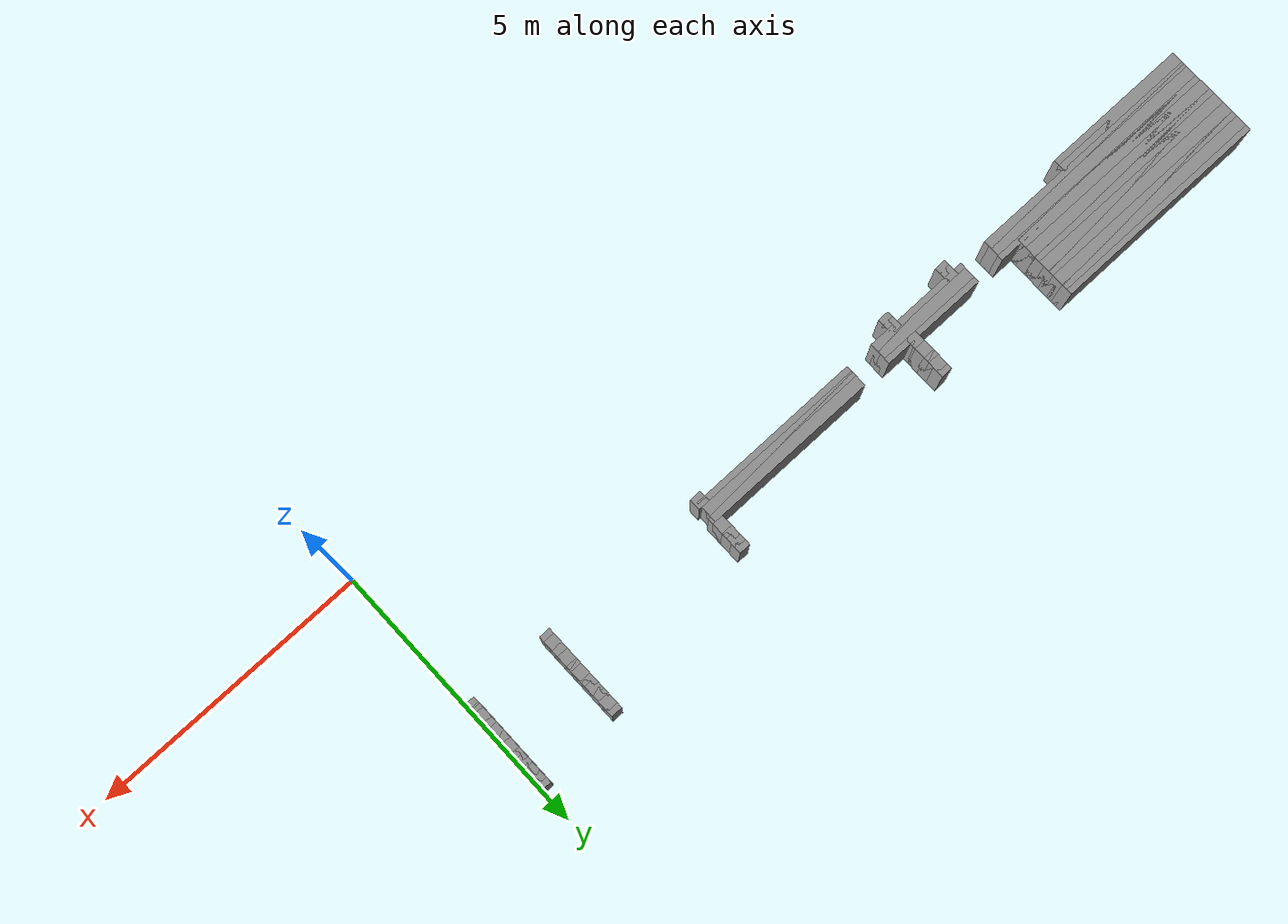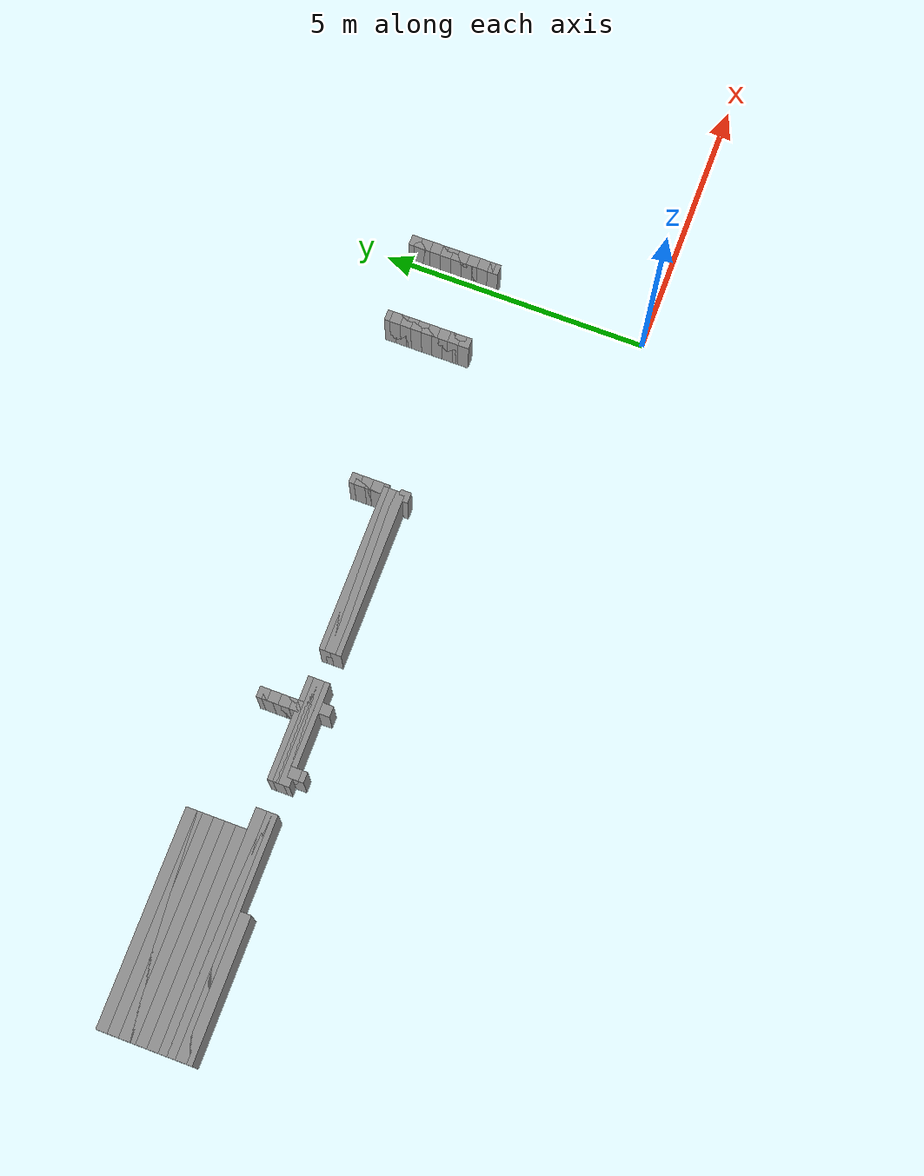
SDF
<sdf version="1.6">
 <world name="GridMap">
  <model name="GridMap">
   <link name="Wall_(86.5,28.0)">
    <collision name="Wall_(86.5,28.0)_Collision">
     <geometry><box><size>0.2 0.2 1.0</size></box></geometry>
     <pose>-8.65 2.8000000000000003 0.5 0 -0 0</pose>
    </collision>
    <visual name="Wall_(86.5,28.0)_Visual">
     <geometry><box><size>0.2 0.2 1.0</size></box></geometry>
     <pose>-8.65 2.8000000000000003 0.5 0 -0 0</pose>
     <material>
      <script><uri>file://media/materials/scripts/gazebo.material</uri><name>Gazebo/Grey</name></script>
      <ambient>1 1 1 1</ambient>
     </material>
     <meta><layer>0</layer></meta>
    </visual>
    <pose>0 0 0.5 0 -0 0</pose>
   </link>
   <link name="Wall_(98.5,28.0)">
    <collision name="Wall_(98.5,28.0)_Collision">
     <geometry><box><size>0.2 0.2 1.0</size></box></geometry>
     <pose>-9.850000000000001 2.8000000000000003 0.5 0 -0 0</pose>
    </collision>
    <visual name="Wall_(98.5,28.0)_Visual">
     <geometry><box><size>0.2 0.2 1.0</size></box></geometry>
     <pose>-9.850000000000001 2.8000000000000003 0.5 0 -0 0</pose>
     <material>
      <script><uri>file://media/materials/scripts/gazebo.material</uri><name>Gazebo/Grey</name></script>
      <ambient>1 1 1 1</ambient>
     </material>
     <meta><layer>0</layer></meta>
    </visual>
    <pose>0 0 0.5 0 -0 0</pose>
   </link>
   <link name="Wall_(136.0,28.0)">
    <collision name="Wall_(136.0,28.0)_Collision">
     <geometry><box><size>2.6 0.2 1.0</size></box></geometry>
     <pose>-13.600000000000001 2.8000000000000003 0.5 0 -0 0</pose>
    </collision>
    <visual name="Wall_(136.0,28.0)_Visual">
     <geometry><box><size>2.6 0.2 1.0</size></box></geometry>
     <pose>-13.600000000000001 2.8000000000000003 0.5 0 -0 0</pose>
     <material>
      <script><uri>file://media/materials/scripts/gazebo.material</uri><name>Gazebo/Grey</name></script>
      <ambient>1 1 1 1</ambient>
     </material>
     <meta><layer>0</layer></meta>
    </visual>
    <pose>0 0 0.5 0 -0 0</pose>
   </link>
   <link name="Wall_(1.0,29.0)">
    <collision name="Wall_(1.0,29.0)_Collision">
     <geometry><box><size>0.2 0.2 1.0</size></box></geometry>
     <pose>-0.1 2.9000000000000004 0.5 0 -0 0</pose>
    </collision>
    <visual name="Wall_(1.0,29.0)_Visual">
     <geometry><box><size>0.2 0.2 1.0</size></box></geometry>
     <pose>-0.1 2.9000000000000004 0.5 0 -0 0</pose>
     <material>
      <script><uri>file://media/materials/scripts/gazebo.material</uri><name>Gazebo/Grey</name></script>
      <ambient>1 1 1 1</ambient>
     </material>
     <meta><layer>0</layer></meta>
    </visual>
    <pose>0 0 0.5 0 -0 0</pose>
   </link>
   <link name="Wall_(16.0,29.0)">
    <collision name="Wall_(16.0,29.0)_Collision">
     <geometry><box><size>0.2 0.2 1.0</size></box></geometry>
     <pose>-1.6 2.9000000000000004 0.5 0 -0 0</pose>
    </collision>
    <visual name="Wall_(16.0,29.0)_Visual">
     <geometry><box><size>0.2 0.2 1.0</size></box></geometry>
     <pose>-1.6 2.9000000000000004 0.5 0 -0 0</pose>
     <material>
      <script><uri>file://media/materials/scripts/gazebo.material</uri><name>Gazebo/Grey</name></script>
      <ambient>1 1 1 1</ambient>
     </material>
     <meta><layer>0</layer></meta>
    </visual>
    <pose>0 0 0.5 0 -0 0</pose>
   </link>
   <link name="Wall_(46.5,29.0)">
    <collision name="Wall_(46.5,29.0)_Collision">
     <geometry><box><size>0.2 0.2 1.0</size></box></geometry>
     <pose>-4.65 2.9000000000000004 0.5 0 -0 0</pose>
    </collision>
    <visual name="Wall_(46.5,29.0)_Visual">
     <geometry><box><size>0.2 0.2 1.0</size></box></geometry>
     <pose>-4.65 2.9000000000000004 0.5 0 -0 0</pose>
     <material>
      <script><uri>file://media/materials/scripts/gazebo.material</uri><name>Gazebo/Grey</name></script>
      <ambient>1 1 1 1</ambient>
     </material>
     <meta><layer>0</layer></meta>
    </visual>
    <pose>0 0 0.5 0 -0 0</pose>
   </link>
   <link name="Wall_(86.5,29.0)">
    <collision name="Wall_(86.5,29.0)_Collision">
     <geometry><box><size>0.2 0.2 1.0</size></box></geometry>
     <pose>-8.65 2.9000000000000004 0.5 0 -0 0</pose>
    </collision>
    <visual name="Wall_(86.5,29.0)_Visual">
     <geometry><box><size>0.2 0.2 1.0</size></box></geometry>
     <pose>-8.65 2.9000000000000004 0.5 0 -0 0</pose>
     <material>
      <script><uri>file://media/materials/scripts/gazebo.material</uri><name>Gazebo/Grey</name></script>
      <ambient>1 1 1 1</ambient>
     </material>
     <meta><layer>0</layer></meta>
    </visual>
    <pose>0 0 0.5 0 -0 0</pose>
   </link>
   <link name="Wall_(98.5,29.0)">
    <collision name="Wall_(98.5,29.0)_Collision">
     <geometry><box><size>0.2 0.2 1.0</size></box></geometry>
     <pose>-9.850000000000001 2.9000000000000004 0.5 0 -0 0</pose>
    </collision>
    <visual name="Wall_(98.5,29.0)_Visual">
     <geometry><box><size>0.2 0.2 1.0</size></box></geometry>
     <pose>-9.850000000000001 2.9000000000000004 0.5 0 -0 0</pose>
     <material>
      <script><uri>file://media/materials/scripts/gazebo.material</uri><name>Gazebo/Grey</name></script>
      <ambient>1 1 1 1</ambient>
     </material>
     <meta><layer>0</layer></meta>
    </visual>
    <pose>0 0 0.5 0 -0 0</pose>
   </link>
   <link name="Wall_(136.0,29.0)">
    <collision name="Wall_(136.0,29.0)_Collision">
     <geometry><box><size>2.6 0.2 1.0</size></box></geometry>
     <pose>-13.600000000000001 2.9000000000000004 0.5 0 -0 0</pose>
    </collision>
    <visual name="Wall_(136.0,29.0)_Visual">
     <geometry><box><size>2.6 0.2 1.0</size></box></geometry>
     <pose>-13.600000000000001 2.9000000000000004 0.5 0 -0 0</pose>
     <material>
      <script><uri>file://media/materials/scripts/gazebo.material</uri><name>Gazebo/Grey</name></script>
      <ambient>1 1 1 1</ambient>
     </material>
     <meta><layer>0</layer></meta>
    </visual>
    <pose>0 0 0.5 0 -0 0</pose>
   </link>
   <link name="Wall_(1.0,30.0)">
    <collision name="Wall_(1.0,30.0)_Collision">
     <geometry><box><size>0.2 0.2 1.0</size></box></geometry>
     <pose>-0.1 3.0 0.5 0 -0 0</pose>
    </collision>
    <visual name="Wall_(1.0,30.0)_Visual">
     <geometry><box><size>0.2 0.2 1.0</size></box></geometry>
     <pose>-0.1 3.0 0.5 0 -0 0</pose>
     <material>
      <script><uri>file://media/materials/scripts/gazebo.material</uri><name>Gazebo/Grey</name></script>
      <ambient>1 1 1 1</ambient>
     </material>
     <meta><layer>0</layer></meta>
    </visual>
    <pose>0 0 0.5 0 -0 0</pose>
   </link>
   <link name="Wall_(16.0,30.0)">
    <collision name="Wall_(16.0,30.0)_Collision">
     <geometry><box><size>0.2 0.2 1.0</size></box></geometry>
     <pose>-1.6 3.0 0.5 0 -0 0</pose>
    </collision>
    <visual name="Wall_(16.0,30.0)_Visual">
     <geometry><box><size>0.2 0.2 1.0</size></box></geometry>
     <pose>-1.6 3.0 0.5 0 -0 0</pose>
     <material>
      <script><uri>file://media/materials/scripts/gazebo.material</uri><name>Gazebo/Grey</name></script>
      <ambient>1 1 1 1</ambient>
     </material>
     <meta><layer>0</layer></meta>
    </visual>
    <pose>0 0 0.5 0 -0 0</pose>
   </link>
   <link name="Wall_(61.5,30.0)">
    <collision name="Wall_(61.5,30.0)_Collision">
     <geometry><box><size>3.1 0.2 1.0</size></box></geometry>
     <pose>-6.15 3.0 0.5 0 -0 0</pose>
    </collision>
    <visual name="Wall_(61.5,30.0)_Visual">
     <geometry><box><size>3.1 0.2 1.0</size></box></geometry>
     <pose>-6.15 3.0 0.5 0 -0 0</pose>
     <material>
      <script><uri>file://media/materials/scripts/gazebo.material</uri><name>Gazebo/Grey</name></script>
      <ambient>1 1 1 1</ambient>
     </material>
     <meta><layer>0</layer></meta>
    </visual>
    <pose>0 0 0.5 0 -0 0</pose>
   </link>
   <link name="Wall_(91.5,30.0)">
    <collision name="Wall_(91.5,30.0)_Collision">
     <geometry><box><size>1.9000000000000001 0.2 1.0</size></box></geometry>
     <pose>-9.15 3.0 0.5 0 -0 0</pose>
    </collision>
    <visual name="Wall_(91.5,30.0)_Visual">
     <geometry><box><size>1.9000000000000001 0.2 1.0</size></box></geometry>
     <pose>-9.15 3.0 0.5 0 -0 0</pose>
     <material>
      <script><uri>file://media/materials/scripts/gazebo.material</uri><name>Gazebo/Grey</name></script>
      <ambient>1 1 1 1</ambient>
     </material>
     <meta><layer>0</layer></meta>
    </visual>
    <pose>0 0 0.5 0 -0 0</pose>
   </link>
   <link name="Wall_(127.5,30.0)">
    <collision name="Wall_(127.5,30.0)_Collision">
     <geometry><box><size>4.3 0.2 1.0</size></box></geometry>
     <pose>-12.75 3.0 0.5 0 -0 0</pose>
    </collision>
    <visual name="Wall_(127.5,30.0)_Visual">
     <geometry><box><size>4.3 0.2 1.0</size></box></geometry>
     <pose>-12.75 3.0 0.5 0 -0 0</pose>
     <material>
      <script><uri>file://media/materials/scripts/gazebo.material</uri><name>Gazebo/Grey</name></script>
      <ambient>1 1 1 1</ambient>
     </material>
     <meta><layer>0</layer></meta>
    </visual>
    <pose>0 0 0.5 0 -0 0</pose>
   </link>
   <link name="Wall_(1.0,31.0)">
    <collision name="Wall_(1.0,31.0)_Collision">
     <geometry><box><size>0.2 0.2 1.0</size></box></geometry>
     <pose>-0.1 3.1 0.5 0 -0 0</pose>
    </collision>
    <visual name="Wall_(1.0,31.0)_Visual">
     <geometry><box><size>0.2 0.2 1.0</size></box></geometry>
     <pose>-0.1 3.1 0.5 0 -0 0</pose>
     <material>
      <script><uri>file://media/materials/scripts/gazebo.material</uri><name>Gazebo/Grey</name></script>
      <ambient>1 1 1 1</ambient>
     </material>
     <meta><layer>0</layer></meta>
    </visual>
    <pose>0 0 0.5 0 -0 0</pose>
   </link>
   <link name="Wall_(16.0,31.0)">
    <collision name="Wall_(16.0,31.0)_Collision">
     <geometry><box><size>0.2 0.2 1.0</size></box></geometry>
     <pose>-1.6 3.1 0.5 0 -0 0</pose>
    </collision>
    <visual name="Wall_(16.0,31.0)_Visual">
     <geometry><box><size>0.2 0.2 1.0</size></box></geometry>
     <pose>-1.6 3.1 0.5 0 -0 0</pose>
     <material>
      <script><uri>file://media/materials/scripts/gazebo.material</uri><name>Gazebo/Grey</name></script>
      <ambient>1 1 1 1</ambient>
     </material>
     <meta><layer>0</layer></meta>
    </visual>
    <pose>0 0 0.5 0 -0 0</pose>
   </link>
   <link name="Wall_(61.5,31.0)">
    <collision name="Wall_(61.5,31.0)_Collision">
     <geometry><box><size>3.1 0.2 1.0</size></box></geometry>
     <pose>-6.15 3.1 0.5 0 -0 0</pose>
    </collision>
    <visual name="Wall_(61.5,31.0)_Visual">
     <geometry><box><size>3.1 0.2 1.0</size></box></geometry>
     <pose>-6.15 3.1 0.5 0 -0 0</pose>
     <material>
      <script><uri>file://media/materials/scripts/gazebo.material</uri><name>Gazebo/Grey</name></script>
      <ambient>1 1 1 1</ambient>
     </material>
     <meta><layer>0</layer></meta>
    </visual>
    <pose>0 0 0.5 0 -0 0</pose>
   </link>
   <link name="Wall_(91.5,31.0)">
    <collision name="Wall_(91.5,31.0)_Collision">
     <geometry><box><size>1.9000000000000001 0.2 1.0</size></box></geometry>
     <pose>-9.15 3.1 0.5 0 -0 0</pose>
    </collision>
    <visual name="Wall_(91.5,31.0)_Visual">
     <geometry><box><size>1.9000000000000001 0.2 1.0</size></box></geometry>
     <pose>-9.15 3.1 0.5 0 -0 0</pose>
     <material>
      <script><uri>file://media/materials/scripts/gazebo.material</uri><name>Gazebo/Grey</name></script>
      <ambient>1 1 1 1</ambient>
     </material>
     <meta><layer>0</layer></meta>
    </visual>
    <pose>0 0 0.5 0 -0 0</pose>
   </link>
   <link name="Wall_(127.5,31.0)">
    <collision name="Wall_(127.5,31.0)_Collision">
     <geometry><box><size>4.3 0.2 1.0</size></box></geometry>
     <pose>-12.75 3.1 0.5 0 -0 0</pose>
    </collision>
    <visual name="Wall_(127.5,31.0)_Visual">
     <geometry><box><size>4.3 0.2 1.0</size></box></geometry>
     <pose>-12.75 3.1 0.5 0 -0 0</pose>
     <material>
      <script><uri>file://media/materials/scripts/gazebo.material</uri><name>Gazebo/Grey</name></script>
      <ambient>1 1 1 1</ambient>
     </material>
     <meta><layer>0</layer></meta>
    </visual>
    <pose>0 0 0.5 0 -0 0</pose>
   </link>
   <link name="Wall_(1.0,32.0)">
    <collision name="Wall_(1.0,32.0)_Collision">
     <geometry><box><size>0.2 0.2 1.0</size></box></geometry>
     <pose>-0.1 3.2 0.5 0 -0 0</pose>
    </collision>
    <visual name="Wall_(1.0,32.0)_Visual">
     <geometry><box><size>0.2 0.2 1.0</size></box></geometry>
     <pose>-0.1 3.2 0.5 0 -0 0</pose>
     <material>
      <script><uri>file://media/materials/scripts/gazebo.material</uri><name>Gazebo/Grey</name></script>
      <ambient>1 1 1 1</ambient>
     </material>
     <meta><layer>0</layer></meta>
    </visual>
    <pose>0 0 0.5 0 -0 0</pose>
   </link>
   <link name="Wall_(16.0,32.0)">
    <collision name="Wall_(16.0,32.0)_Collision">
     <geometry><box><size>0.2 0.2 1.0</size></box></geometry>
     <pose>-1.6 3.2 0.5 0 -0 0</pose>
    </collision>
    <visual name="Wall_(16.0,32.0)_Visual">
     <geometry><box><size>0.2 0.2 1.0</size></box></geometry>
     <pose>-1.6 3.2 0.5 0 -0 0</pose>
     <material>
      <script><uri>file://media/materials/scripts/gazebo.material</uri><name>Gazebo/Grey</name></script>
      <ambient>1 1 1 1</ambient>
     </material>
     <meta><layer>0</layer></meta>
    </visual>
    <pose>0 0 0.5 0 -0 0</pose>
   </link>
   <link name="Wall_(61.5,32.0)">
    <collision name="Wall_(61.5,32.0)_Collision">
     <geometry><box><size>3.1 0.2 1.0</size></box></geometry>
     <pose>-6.15 3.2 0.5 0 -0 0</pose>
    </collision>
    <visual name="Wall_(61.5,32.0)_Visual">
     <geometry><box><size>3.1 0.2 1.0</size></box></geometry>
     <pose>-6.15 3.2 0.5 0 -0 0</pose>
     <material>
      <script><uri>file://media/materials/scripts/gazebo.material</uri><name>Gazebo/Grey</name></script>
      <ambient>1 1 1 1</ambient>
     </material>
     <meta><layer>0</layer></meta>
    </visual>
    <pose>0 0 0.5 0 -0 0</pose>
   </link>
   <link name="Wall_(91.5,32.0)">
    <collision name="Wall_(91.5,32.0)_Collision">
     <geometry><box><size>1.9000000000000001 0.2 1.0</size></box></geometry>
     <pose>-9.15 3.2 0.5 0 -0 0</pose>
    </collision>
    <visual name="Wall_(91.5,32.0)_Visual">
     <geometry><box><size>1.9000000000000001 0.2 1.0</size></box></geometry>
     <pose>-9.15 3.2 0.5 0 -0 0</pose>
     <material>
      <script><uri>file://media/materials/scripts/gazebo.material</uri><name>Gazebo/Grey</name></script>
      <ambient>1 1 1 1</ambient>
     </material>
     <meta><layer>0</layer></meta>
    </visual>
    <pose>0 0 0.5 0 -0 0</pose>
   </link>
   <link name="Wall_(127.5,32.0)">
    <collision name="Wall_(127.5,32.0)_Collision">
     <geometry><box><size>4.3 0.2 1.0</size></box></geometry>
     <pose>-12.75 3.2 0.5 0 -0 0</pose>
    </collision>
    <visual name="Wall_(127.5,32.0)_Visual">
     <geometry><box><size>4.3 0.2 1.0</size></box></geometry>
     <pose>-12.75 3.2 0.5 0 -0 0</pose>
     <material>
      <script><uri>file://media/materials/scripts/gazebo.material</uri><name>Gazebo/Grey</name></script>
      <ambient>1 1 1 1</ambient>
     </material>
     <meta><layer>0</layer></meta>
    </visual>
    <pose>0 0 0.5 0 -0 0</pose>
   </link>
   <link name="Wall_(1.0,33.0)">
    <collision name="Wall_(1.0,33.0)_Collision">
     <geometry><box><size>0.2 0.2 1.0</size></box></geometry>
     <pose>-0.1 3.3000000000000003 0.5 0 -0 0</pose>
    </collision>
    <visual name="Wall_(1.0,33.0)_Visual">
     <geometry><box><size>0.2 0.2 1.0</size></box></geometry>
     <pose>-0.1 3.3000000000000003 0.5 0 -0 0</pose>
     <material>
      <script><uri>file://media/materials/scripts/gazebo.material</uri><name>Gazebo/Grey</name></script>
      <ambient>1 1 1 1</ambient>
     </material>
     <meta><layer>0</layer></meta>
    </visual>
    <pose>0 0 0.5 0 -0 0</pose>
   </link>
   <link name="Wall_(16.0,33.0)">
    <collision name="Wall_(16.0,33.0)_Collision">
     <geometry><box><size>0.2 0.2 1.0</size></box></geometry>
     <pose>-1.6 3.3000000000000003 0.5 0 -0 0</pose>
    </collision>
    <visual name="Wall_(16.0,33.0)_Visual">
     <geometry><box><size>0.2 0.2 1.0</size></box></geometry>
     <pose>-1.6 3.3000000000000003 0.5 0 -0 0</pose>
     <material>
      <script><uri>file://media/materials/scripts/gazebo.material</uri><name>Gazebo/Grey</name></script>
      <ambient>1 1 1 1</ambient>
     </material>
     <meta><layer>0</layer></meta>
    </visual>
    <pose>0 0 0.5 0 -0 0</pose>
   </link>
   <link name="Wall_(46.5,33.0)">
    <collision name="Wall_(46.5,33.0)_Collision">
     <geometry><box><size>0.2 0.2 1.0</size></box></geometry>
     <pose>-4.65 3.3000000000000003 0.5 0 -0 0</pose>
    </collision>
    <visual name="Wall_(46.5,33.0)_Visual">
     <geometry><box><size>0.2 0.2 1.0</size></box></geometry>
     <pose>-4.65 3.3000000000000003 0.5 0 -0 0</pose>
     <material>
      <script><uri>file://media/materials/scripts/gazebo.material</uri><name>Gazebo/Grey</name></script>
      <ambient>1 1 1 1</ambient>
     </material>
     <meta><layer>0</layer></meta>
    </visual>
    <pose>0 0 0.5 0 -0 0</pose>
   </link>
   <link name="Wall_(87.5,33.0)">
    <collision name="Wall_(87.5,33.0)_Collision">
     <geometry><box><size>0.2 0.2 1.0</size></box></geometry>
     <pose>-8.75 3.3000000000000003 0.5 0 -0 0</pose>
    </collision>
    <visual name="Wall_(87.5,33.0)_Visual">
     <geometry><box><size>0.2 0.2 1.0</size></box></geometry>
     <pose>-8.75 3.3000000000000003 0.5 0 -0 0</pose>
     <material>
      <script><uri>file://media/materials/scripts/gazebo.material</uri><name>Gazebo/Grey</name></script>
      <ambient>1 1 1 1</ambient>
     </material>
     <meta><layer>0</layer></meta>
    </visual>
    <pose>0 0 0.5 0 -0 0</pose>
   </link>
   <link name="Wall_(129.5,33.0)">
    <collision name="Wall_(129.5,33.0)_Collision">
     <geometry><box><size>3.9000000000000004 0.2 1.0</size></box></geometry>
     <pose>-12.950000000000001 3.3000000000000003 0.5 0 -0 0</pose>
    </collision>
    <visual name="Wall_(129.5,33.0)_Visual">
     <geometry><box><size>3.9000000000000004 0.2 1.0</size></box></geometry>
     <pose>-12.950000000000001 3.3000000000000003 0.5 0 -0 0</pose>
     <material>
      <script><uri>file://media/materials/scripts/gazebo.material</uri><name>Gazebo/Grey</name></script>
      <ambient>1 1 1 1</ambient>
     </material>
     <meta><layer>0</layer></meta>
    </visual>
    <pose>0 0 0.5 0 -0 0</pose>
   </link>
   <link name="Wall_(1.0,34.0)">
    <collision name="Wall_(1.0,34.0)_Collision">
     <geometry><box><size>0.2 0.2 1.0</size></box></geometry>
     <pose>-0.1 3.4000000000000004 0.5 0 -0 0</pose>
    </collision>
    <visual name="Wall_(1.0,34.0)_Visual">
     <geometry><box><size>0.2 0.2 1.0</size></box></geometry>
     <pose>-0.1 3.4000000000000004 0.5 0 -0 0</pose>
     <material>
      <script><uri>file://media/materials/scripts/gazebo.material</uri><name>Gazebo/Grey</name></script>
      <ambient>1 1 1 1</ambient>
     </material>
     <meta><layer>0</layer></meta>
    </visual>
    <pose>0 0 0.5 0 -0 0</pose>
   </link>
   <link name="Wall_(16.0,34.0)">
    <collision name="Wall_(16.0,34.0)_Collision">
     <geometry><box><size>0.2 0.2 1.0</size></box></geometry>
     <pose>-1.6 3.4000000000000004 0.5 0 -0 0</pose>
    </collision>
    <visual name="Wall_(16.0,34.0)_Visual">
     <geometry><box><size>0.2 0.2 1.0</size></box></geometry>
     <pose>-1.6 3.4000000000000004 0.5 0 -0 0</pose>
     <material>
      <script><uri>file://media/materials/scripts/gazebo.material</uri><name>Gazebo/Grey</name></script>
      <ambient>1 1 1 1</ambient>
     </material>
     <meta><layer>0</layer></meta>
    </visual>
    <pose>0 0 0.5 0 -0 0</pose>
   </link>
   <link name="Wall_(46.5,34.0)">
    <collision name="Wall_(46.5,34.0)_Collision">
     <geometry><box><size>0.2 0.2 1.0</size></box></geometry>
     <pose>-4.65 3.4000000000000004 0.5 0 -0 0</pose>
    </collision>
    <visual name="Wall_(46.5,34.0)_Visual">
     <geometry><box><size>0.2 0.2 1.0</size></box></geometry>
     <pose>-4.65 3.4000000000000004 0.5 0 -0 0</pose>
     <material>
      <script><uri>file://media/materials/scripts/gazebo.material</uri><name>Gazebo/Grey</name></script>
      <ambient>1 1 1 1</ambient>
     </material>
     <meta><layer>0</layer></meta>
    </visual>
    <pose>0 0 0.5 0 -0 0</pose>
   </link>
   <link name="Wall_(87.5,34.0)">
    <collision name="Wall_(87.5,34.0)_Collision">
     <geometry><box><size>0.2 0.2 1.0</size></box></geometry>
     <pose>-8.75 3.4000000000000004 0.5 0 -0 0</pose>
    </collision>
    <visual name="Wall_(87.5,34.0)_Visual">
     <geometry><box><size>0.2 0.2 1.0</size></box></geometry>
     <pose>-8.75 3.4000000000000004 0.5 0 -0 0</pose>
     <material>
      <script><uri>file://media/materials/scripts/gazebo.material</uri><name>Gazebo/Grey</name></script>
      <ambient>1 1 1 1</ambient>
     </material>
     <meta><layer>0</layer></meta>
    </visual>
    <pose>0 0 0.5 0 -0 0</pose>
   </link>
   <link name="Wall_(129.5,34.0)">
    <collision name="Wall_(129.5,34.0)_Collision">
     <geometry><box><size>3.9000000000000004 0.2 1.0</size></box></geometry>
     <pose>-12.950000000000001 3.4000000000000004 0.5 0 -0 0</pose>
    </collision>
    <visual name="Wall_(129.5,34.0)_Visual">
     <geometry><box><size>3.9000000000000004 0.2 1.0</size></box></geometry>
     <pose>-12.950000000000001 3.4000000000000004 0.5 0 -0 0</pose>
     <material>
      <script><uri>file://media/materials/scripts/gazebo.material</uri><name>Gazebo/Grey</name></script>
      <ambient>1 1 1 1</ambient>
     </material>
     <meta><layer>0</layer></meta>
    </visual>
    <pose>0 0 0.5 0 -0 0</pose>
   </link>
   <link name="Wall_(1.0,35.0)">
    <collision name="Wall_(1.0,35.0)_Collision">
     <geometry><box><size>0.2 0.2 1.0</size></box></geometry>
     <pose>-0.1 3.5 0.5 0 -0 0</pose>
    </collision>
    <visual name="Wall_(1.0,35.0)_Visual">
     <geometry><box><size>0.2 0.2 1.0</size></box></geometry>
     <pose>-0.1 3.5 0.5 0 -0 0</pose>
     <material>
      <script><uri>file://media/materials/scripts/gazebo.material</uri><name>Gazebo/Grey</name></script>
      <ambient>1 1 1 1</ambient>
     </material>
     <meta><layer>0</layer></meta>
    </visual>
    <pose>0 0 0.5 0 -0 0</pose>
   </link>
   <link name="Wall_(16.0,35.0)">
    <collision name="Wall_(16.0,35.0)_Collision">
     <geometry><box><size>0.2 0.2 1.0</size></box></geometry>
     <pose>-1.6 3.5 0.5 0 -0 0</pose>
    </collision>
    <visual name="Wall_(16.0,35.0)_Visual">
     <geometry><box><size>0.2 0.2 1.0</size></box></geometry>
     <pose>-1.6 3.5 0.5 0 -0 0</pose>
     <material>
      <script><uri>file://media/materials/scripts/gazebo.material</uri><name>Gazebo/Grey</name></script>
      <ambient>1 1 1 1</ambient>
     </material>
     <meta><layer>0</layer></meta>
    </visual>
    <pose>0 0 0.5 0 -0 0</pose>
   </link>
   <link name="Wall_(46.5,35.0)">
    <collision name="Wall_(46.5,35.0)_Collision">
     <geometry><box><size>0.2 0.2 1.0</size></box></geometry>
     <pose>-4.65 3.5 0.5 0 -0 0</pose>
    </collision>
    <visual name="Wall_(46.5,35.0)_Visual">
     <geometry><box><size>0.2 0.2 1.0</size></box></geometry>
     <pose>-4.65 3.5 0.5 0 -0 0</pose>
     <material>
      <script><uri>file://media/materials/scripts/gazebo.material</uri><name>Gazebo/Grey</name></script>
      <ambient>1 1 1 1</ambient>
     </material>
     <meta><layer>0</layer></meta>
    </visual>
    <pose>0 0 0.5 0 -0 0</pose>
   </link>
   <link name="Wall_(87.5,35.0)">
    <collision name="Wall_(87.5,35.0)_Collision">
     <geometry><box><size>0.2 0.2 1.0</size></box></geometry>
     <pose>-8.75 3.5 0.5 0 -0 0</pose>
    </collision>
    <visual name="Wall_(87.5,35.0)_Visual">
     <geometry><box><size>0.2 0.2 1.0</size></box></geometry>
     <pose>-8.75 3.5 0.5 0 -0 0</pose>
     <material>
      <script><uri>file://media/materials/scripts/gazebo.material</uri><name>Gazebo/Grey</name></script>
      <ambient>1 1 1 1</ambient>
     </material>
     <meta><layer>0</layer></meta>
    </visual>
    <pose>0 0 0.5 0 -0 0</pose>
   </link>
   <link name="Wall_(129.5,35.0)">
    <collision name="Wall_(129.5,35.0)_Collision">
     <geometry><box><size>3.9000000000000004 0.2 1.0</size></box></geometry>
     <pose>-12.950000000000001 3.5 0.5 0 -0 0</pose>
    </collision>
    <visual name="Wall_(129.5,35.0)_Visual">
     <geometry><box><size>3.9000000000000004 0.2 1.0</size></box></geometry>
     <pose>-12.950000000000001 3.5 0.5 0 -0 0</pose>
     <material>
      <script><uri>file://media/materials/scripts/gazebo.material</uri><name>Gazebo/Grey</name></script>
      <ambient>1 1 1 1</ambient>
     </material>
     <meta><layer>0</layer></meta>
    </visual>
    <pose>0 0 0.5 0 -0 0</pose>
   </link>
   <link name="Wall_(1.0,36.0)">
    <collision name="Wall_(1.0,36.0)_Collision">
     <geometry><box><size>0.2 0.2 1.0</size></box></geometry>
     <pose>-0.1 3.6 0.5 0 -0 0</pose>
    </collision>
    <visual name="Wall_(1.0,36.0)_Visual">
     <geometry><box><size>0.2 0.2 1.0</size></box></geometry>
     <pose>-0.1 3.6 0.5 0 -0 0</pose>
     <material>
      <script><uri>file://media/materials/scripts/gazebo.material</uri><name>Gazebo/Grey</name></script>
      <ambient>1 1 1 1</ambient>
     </material>
     <meta><layer>0</layer></meta>
    </visual>
    <pose>0 0 0.5 0 -0 0</pose>
   </link>
   <link name="Wall_(16.0,36.0)">
    <collision name="Wall_(16.0,36.0)_Collision">
     <geometry><box><size>0.2 0.2 1.0</size></box></geometry>
     <pose>-1.6 3.6 0.5 0 -0 0</pose>
    </collision>
    <visual name="Wall_(16.0,36.0)_Visual">
     <geometry><box><size>0.2 0.2 1.0</size></box></geometry>
     <pose>-1.6 3.6 0.5 0 -0 0</pose>
     <material>
      <script><uri>file://media/materials/scripts/gazebo.material</uri><name>Gazebo/Grey</name></script>
      <ambient>1 1 1 1</ambient>
     </material>
     <meta><layer>0</layer></meta>
    </visual>
    <pose>0 0 0.5 0 -0 0</pose>
   </link>
   <link name="Wall_(46.5,36.0)">
    <collision name="Wall_(46.5,36.0)_Collision">
     <geometry><box><size>0.2 0.2 1.0</size></box></geometry>
     <pose>-4.65 3.6 0.5 0 -0 0</pose>
    </collision>
    <visual name="Wall_(46.5,36.0)_Visual">
     <geometry><box><size>0.2 0.2 1.0</size></box></geometry>
     <pose>-4.65 3.6 0.5 0 -0 0</pose>
     <material>
      <script><uri>file://media/materials/scripts/gazebo.material</uri><name>Gazebo/Grey</name></script>
      <ambient>1 1 1 1</ambient>
     </material>
     <meta><layer>0</layer></meta>
    </visual>
    <pose>0 0 0.5 0 -0 0</pose>
   </link>
   <link name="Wall_(87.5,36.0)">
    <collision name="Wall_(87.5,36.0)_Collision">
     <geometry><box><size>0.2 0.2 1.0</size></box></geometry>
     <pose>-8.75 3.6 0.5 0 -0 0</pose>
    </collision>
    <visual name="Wall_(87.5,36.0)_Visual">
     <geometry><box><size>0.2 0.2 1.0</size></box></geometry>
     <pose>-8.75 3.6 0.5 0 -0 0</pose>
     <material>
      <script><uri>file://media/materials/scripts/gazebo.material</uri><name>Gazebo/Grey</name></script>
      <ambient>1 1 1 1</ambient>
     </material>
     <meta><layer>0</layer></meta>
    </visual>
    <pose>0 0 0.5 0 -0 0</pose>
   </link>
   <link name="Wall_(129.5,36.0)">
    <collision name="Wall_(129.5,36.0)_Collision">
     <geometry><box><size>3.9000000000000004 0.2 1.0</size></box></geometry>
     <pose>-12.950000000000001 3.6 0.5 0 -0 0</pose>
    </collision>
    <visual name="Wall_(129.5,36.0)_Visual">
     <geometry><box><size>3.9000000000000004 0.2 1.0</size></box></geometry>
     <pose>-12.950000000000001 3.6 0.5 0 -0 0</pose>
     <material>
      <script><uri>file://media/materials/scripts/gazebo.material</uri><name>Gazebo/Grey</name></script>
      <ambient>1 1 1 1</ambient>
     </material>
     <meta><layer>0</layer></meta>
    </visual>
    <pose>0 0 0.5 0 -0 0</pose>
   </link>
   <link name="Wall_(1.0,37.0)">
    <collision name="Wall_(1.0,37.0)_Collision">
     <geometry><box><size>0.2 0.2 1.0</size></box></geometry>
     <pose>-0.1 3.7 0.5 0 -0 0</pose>
    </collision>
    <visual name="Wall_(1.0,37.0)_Visual">
     <geometry><box><size>0.2 0.2 1.0</size></box></geometry>
     <pose>-0.1 3.7 0.5 0 -0 0</pose>
     <material>
      <script><uri>file://media/materials/scripts/gazebo.material</uri><name>Gazebo/Grey</name></script>
      <ambient>1 1 1 1</ambient>
     </material>
     <meta><layer>0</layer></meta>
    </visual>
    <pose>0 0 0.5 0 -0 0</pose>
   </link>
   <link name="Wall_(16.0,37.0)">
    <collision name="Wall_(16.0,37.0)_Collision">
     <geometry><box><size>0.2 0.2 1.0</size></box></geometry>
     <pose>-1.6 3.7 0.5 0 -0 0</pose>
    </collision>
    <visual name="Wall_(16.0,37.0)_Visual">
     <geometry><box><size>0.2 0.2 1.0</size></box></geometry>
     <pose>-1.6 3.7 0.5 0 -0 0</pose>
     <material>
      <script><uri>file://media/materials/scripts/gazebo.material</uri><name>Gazebo/Grey</name></script>
      <ambient>1 1 1 1</ambient>
     </material>
     <meta><layer>0</layer></meta>
    </visual>
    <pose>0 0 0.5 0 -0 0</pose>
   </link>
   <link name="Wall_(46.5,37.0)">
    <collision name="Wall_(46.5,37.0)_Collision">
     <geometry><box><size>0.2 0.2 1.0</size></box></geometry>
     <pose>-4.65 3.7 0.5 0 -0 0</pose>
    </collision>
    <visual name="Wall_(46.5,37.0)_Visual">
     <geometry><box><size>0.2 0.2 1.0</size></box></geometry>
     <pose>-4.65 3.7 0.5 0 -0 0</pose>
     <material>
      <script><uri>file://media/materials/scripts/gazebo.material</uri><name>Gazebo/Grey</name></script>
      <ambient>1 1 1 1</ambient>
     </material>
     <meta><layer>0</layer></meta>
    </visual>
    <pose>0 0 0.5 0 -0 0</pose>
   </link>
   <link name="Wall_(87.5,37.0)">
    <collision name="Wall_(87.5,37.0)_Collision">
     <geometry><box><size>0.2 0.2 1.0</size></box></geometry>
     <pose>-8.75 3.7 0.5 0 -0 0</pose>
    </collision>
    <visual name="Wall_(87.5,37.0)_Visual">
     <geometry><box><size>0.2 0.2 1.0</size></box></geometry>
     <pose>-8.75 3.7 0.5 0 -0 0</pose>
     <material>
      <script><uri>file://media/materials/scripts/gazebo.material</uri><name>Gazebo/Grey</name></script>
      <ambient>1 1 1 1</ambient>
     </material>
     <meta><layer>0</layer></meta>
    </visual>
    <pose>0 0 0.5 0 -0 0</pose>
   </link>
   <link name="Wall_(129.5,37.0)">
    <collision name="Wall_(129.5,37.0)_Collision">
     <geometry><box><size>3.9000000000000004 0.2 1.0</size></box></geometry>
     <pose>-12.950000000000001 3.7 0.5 0 -0 0</pose>
    </collision>
    <visual name="Wall_(129.5,37.0)_Visual">
     <geometry><box><size>3.9000000000000004 0.2 1.0</size></box></geometry>
     <pose>-12.950000000000001 3.7 0.5 0 -0 0</pose>
     <material>
      <script><uri>file://media/materials/scripts/gazebo.material</uri><name>Gazebo/Grey</name></script>
      <ambient>1 1 1 1</ambient>
     </material>
     <meta><layer>0</layer></meta>
    </visual>
    <pose>0 0 0.5 0 -0 0</pose>
   </link>
   <link name="Wall_(1.0,38.0)">
    <collision name="Wall_(1.0,38.0)_Collision">
     <geometry><box><size>0.2 0.2 1.0</size></box></geometry>
     <pose>-0.1 3.8000000000000003 0.5 0 -0 0</pose>
    </collision>
    <visual name="Wall_(1.0,38.0)_Visual">
     <geometry><box><size>0.2 0.2 1.0</size></box></geometry>
     <pose>-0.1 3.8000000000000003 0.5 0 -0 0</pose>
     <material>
      <script><uri>file://media/materials/scripts/gazebo.material</uri><name>Gazebo/Grey</name></script>
      <ambient>1 1 1 1</ambient>
     </material>
     <meta><layer>0</layer></meta>
    </visual>
    <pose>0 0 0.5 0 -0 0</pose>
   </link>
   <link name="Wall_(16.0,38.0)">
    <collision name="Wall_(16.0,38.0)_Collision">
     <geometry><box><size>0.2 0.2 1.0</size></box></geometry>
     <pose>-1.6 3.8000000000000003 0.5 0 -0 0</pose>
    </collision>
    <visual name="Wall_(16.0,38.0)_Visual">
     <geometry><box><size>0.2 0.2 1.0</size></box></geometry>
     <pose>-1.6 3.8000000000000003 0.5 0 -0 0</pose>
     <material>
      <script><uri>file://media/materials/scripts/gazebo.material</uri><name>Gazebo/Grey</name></script>
      <ambient>1 1 1 1</ambient>
     </material>
     <meta><layer>0</layer></meta>
    </visual>
    <pose>0 0 0.5 0 -0 0</pose>
   </link>
   <link name="Wall_(46.5,38.0)">
    <collision name="Wall_(46.5,38.0)_Collision">
     <geometry><box><size>0.2 0.2 1.0</size></box></geometry>
     <pose>-4.65 3.8000000000000003 0.5 0 -0 0</pose>
    </collision>
    <visual name="Wall_(46.5,38.0)_Visual">
     <geometry><box><size>0.2 0.2 1.0</size></box></geometry>
     <pose>-4.65 3.8000000000000003 0.5 0 -0 0</pose>
     <material>
      <script><uri>file://media/materials/scripts/gazebo.material</uri><name>Gazebo/Grey</name></script>
      <ambient>1 1 1 1</ambient>
     </material>
     <meta><layer>0</layer></meta>
    </visual>
    <pose>0 0 0.5 0 -0 0</pose>
   </link>
   <link name="Wall_(87.5,38.0)">
    <collision name="Wall_(87.5,38.0)_Collision">
     <geometry><box><size>0.2 0.2 1.0</size></box></geometry>
     <pose>-8.75 3.8000000000000003 0.5 0 -0 0</pose>
    </collision>
    <visual name="Wall_(87.5,38.0)_Visual">
     <geometry><box><size>0.2 0.2 1.0</size></box></geometry>
     <pose>-8.75 3.8000000000000003 0.5 0 -0 0</pose>
     <material>
      <script><uri>file://media/materials/scripts/gazebo.material</uri><name>Gazebo/Grey</name></script>
      <ambient>1 1 1 1</ambient>
     </material>
     <meta><layer>0</layer></meta>
    </visual>
    <pose>0 0 0.5 0 -0 0</pose>
   </link>
   <link name="Wall_(129.5,38.0)">
    <collision name="Wall_(129.5,38.0)_Collision">
     <geometry><box><size>3.9000000000000004 0.2 1.0</size></box></geometry>
     <pose>-12.950000000000001 3.8000000000000003 0.5 0 -0 0</pose>
    </collision>
    <visual name="Wall_(129.5,38.0)_Visual">
     <geometry><box><size>3.9000000000000004 0.2 1.0</size></box></geometry>
     <pose>-12.950000000000001 3.8000000000000003 0.5 0 -0 0</pose>
     <material>
      <script><uri>file://media/materials/scripts/gazebo.material</uri><name>Gazebo/Grey</name></script>
      <ambient>1 1 1 1</ambient>
     </material>
     <meta><layer>0</layer></meta>
    </visual>
    <pose>0 0 0.5 0 -0 0</pose>
   </link>
   <link name="Wall_(1.0,39.0)">
    <collision name="Wall_(1.0,39.0)_Collision">
     <geometry><box><size>0.2 0.2 1.0</size></box></geometry>
     <pose>-0.1 3.9000000000000004 0.5 0 -0 0</pose>
    </collision>
    <visual name="Wall_(1.0,39.0)_Visual">
     <geometry><box><size>0.2 0.2 1.0</size></box></geometry>
     <pose>-0.1 3.9000000000000004 0.5 0 -0 0</pose>
     <material>
      <script><uri>file://media/materials/scripts/gazebo.material</uri><name>Gazebo/Grey</name></script>
      <ambient>1 1 1 1</ambient>
     </material>
     <meta><layer>0</layer></meta>
    </visual>
    <pose>0 0 0.5 0 -0 0</pose>
   </link>
   <link name="Wall_(16.0,39.0)">
    <collision name="Wall_(16.0,39.0)_Collision">
     <geometry><box><size>0.2 0.2 1.0</size></box></geometry>
     <pose>-1.6 3.9000000000000004 0.5 0 -0 0</pose>
    </collision>
    <visual name="Wall_(16.0,39.0)_Visual">
     <geometry><box><size>0.2 0.2 1.0</size></box></geometry>
     <pose>-1.6 3.9000000000000004 0.5 0 -0 0</pose>
     <material>
      <script><uri>file://media/materials/scripts/gazebo.material</uri><name>Gazebo/Grey</name></script>
      <ambient>1 1 1 1</ambient>
     </material>
     <meta><layer>0</layer></meta>
    </visual>
    <pose>0 0 0.5 0 -0 0</pose>
   </link>
   <link name="Wall_(87.5,39.0)">
    <collision name="Wall_(87.5,39.0)_Collision">
     <geometry><box><size>0.2 0.2 1.0</size></box></geometry>
     <pose>-8.75 3.9000000000000004 0.5 0 -0 0</pose>
    </collision>
    <visual name="Wall_(87.5,39.0)_Visual">
     <geometry><box><size>0.2 0.2 1.0</size></box></geometry>
     <pose>-8.75 3.9000000000000004 0.5 0 -0 0</pose>
     <material>
      <script><uri>file://media/materials/scripts/gazebo.material</uri><name>Gazebo/Grey</name></script>
      <ambient>1 1 1 1</ambient>
     </material>
     <meta><layer>0</layer></meta>
    </visual>
    <pose>0 0 0.5 0 -0 0</pose>
   </link>
   <link name="Wall_(129.5,39.0)">
    <collision name="Wall_(129.5,39.0)_Collision">
     <geometry><box><size>3.9000000000000004 0.2 1.0</size></box></geometry>
     <pose>-12.950000000000001 3.9000000000000004 0.5 0 -0 0</pose>
    </collision>
    <visual name="Wall_(129.5,39.0)_Visual">
     <geometry><box><size>3.9000000000000004 0.2 1.0</size></box></geometry>
     <pose>-12.950000000000001 3.9000000000000004 0.5 0 -0 0</pose>
     <material>
      <script><uri>file://media/materials/scripts/gazebo.material</uri><name>Gazebo/Grey</name></script>
      <ambient>1 1 1 1</ambient>
     </material>
     <meta><layer>0</layer></meta>
    </visual>
    <pose>0 0 0.5 0 -0 0</pose>
   </link>
   <link name="Wall_(1.0,40.0)">
    <collision name="Wall_(1.0,40.0)_Collision">
     <geometry><box><size>0.2 0.2 1.0</size></box></geometry>
     <pose>-0.1 4.0 0.5 0 -0 0</pose>
    </collision>
    <visual name="Wall_(1.0,40.0)_Visual">
     <geometry><box><size>0.2 0.2 1.0</size></box></geometry>
     <pose>-0.1 4.0 0.5 0 -0 0</pose>
     <material>
      <script><uri>file://media/materials/scripts/gazebo.material</uri><name>Gazebo/Grey</name></script>
      <ambient>1 1 1 1</ambient>
     </material>
     <meta><layer>0</layer></meta>
    </visual>
    <pose>0 0 0.5 0 -0 0</pose>
   </link>
   <link name="Wall_(16.0,40.0)">
    <collision name="Wall_(16.0,40.0)_Collision">
     <geometry><box><size>0.2 0.2 1.0</size></box></geometry>
     <pose>-1.6 4.0 0.5 0 -0 0</pose>
    </collision>
    <visual name="Wall_(16.0,40.0)_Visual">
     <geometry><box><size>0.2 0.2 1.0</size></box></geometry>
     <pose>-1.6 4.0 0.5 0 -0 0</pose>
     <material>
      <script><uri>file://media/materials/scripts/gazebo.material</uri><name>Gazebo/Grey</name></script>
      <ambient>1 1 1 1</ambient>
     </material>
     <meta><layer>0</layer></meta>
    </visual>
    <pose>0 0 0.5 0 -0 0</pose>
   </link>
   <link name="Wall_(129.5,40.0)">
    <collision name="Wall_(129.5,40.0)_Collision">
     <geometry><box><size>3.9000000000000004 0.2 1.0</size></box></geometry>
     <pose>-12.950000000000001 4.0 0.5 0 -0 0</pose>
    </collision>
    <visual name="Wall_(129.5,40.0)_Visual">
     <geometry><box><size>3.9000000000000004 0.2 1.0</size></box></geometry>
     <pose>-12.950000000000001 4.0 0.5 0 -0 0</pose>
     <material>
      <script><uri>file://media/materials/scripts/gazebo.material</uri><name>Gazebo/Grey</name></script>
      <ambient>1 1 1 1</ambient>
     </material>
     <meta><layer>0</layer></meta>
    </visual>
    <pose>0 0 0.5 0 -0 0</pose>
   </link>
   <link name="Wall_(1.0,41.0)">
    <collision name="Wall_(1.0,41.0)_Collision">
     <geometry><box><size>0.2 0.2 1.0</size></box></geometry>
     <pose>-0.1 4.1000000000000005 0.5 0 -0 0</pose>
    </collision>
    <visual name="Wall_(1.0,41.0)_Visual">
     <geometry><box><size>0.2 0.2 1.0</size></box></geometry>
     <pose>-0.1 4.1000000000000005 0.5 0 -0 0</pose>
     <material>
      <script><uri>file://media/materials/scripts/gazebo.material</uri><name>Gazebo/Grey</name></script>
      <ambient>1 1 1 1</ambient>
     </material>
     <meta><layer>0</layer></meta>
    </visual>
    <pose>0 0 0.5 0 -0 0</pose>
   </link>
   <link name="Wall_(16.0,41.0)">
    <collision name="Wall_(16.0,41.0)_Collision">
     <geometry><box><size>0.2 0.2 1.0</size></box></geometry>
     <pose>-1.6 4.1000000000000005 0.5 0 -0 0</pose>
    </collision>
    <visual name="Wall_(16.0,41.0)_Visual">
     <geometry><box><size>0.2 0.2 1.0</size></box></geometry>
     <pose>-1.6 4.1000000000000005 0.5 0 -0 0</pose>
     <material>
      <script><uri>file://media/materials/scripts/gazebo.material</uri><name>Gazebo/Grey</name></script>
      <ambient>1 1 1 1</ambient>
     </material>
     <meta><layer>0</layer></meta>
    </visual>
    <pose>0 0 0.5 0 -0 0</pose>
   </link>
   <link name="Wall_(129.5,41.0)">
    <collision name="Wall_(129.5,41.0)_Collision">
     <geometry><box><size>3.9000000000000004 0.2 1.0</size></box></geometry>
     <pose>-12.950000000000001 4.1000000000000005 0.5 0 -0 0</pose>
    </collision>
    <visual name="Wall_(129.5,41.0)_Visual">
     <geometry><box><size>3.9000000000000004 0.2 1.0</size></box></geometry>
     <pose>-12.950000000000001 4.1000000000000005 0.5 0 -0 0</pose>
     <material>
      <script><uri>file://media/materials/scripts/gazebo.material</uri><name>Gazebo/Grey</name></script>
      <ambient>1 1 1 1</ambient>
     </material>
     <meta><layer>0</layer></meta>
    </visual>
    <pose>0 0 0.5 0 -0 0</pose>
   </link>
   <link name="Wall_(1.0,42.0)">
    <collision name="Wall_(1.0,42.0)_Collision">
     <geometry><box><size>0.2 0.2 1.0</size></box></geometry>
     <pose>-0.1 4.2 0.5 0 -0 0</pose>
    </collision>
    <visual name="Wall_(1.0,42.0)_Visual">
     <geometry><box><size>0.2 0.2 1.0</size></box></geometry>
     <pose>-0.1 4.2 0.5 0 -0 0</pose>
     <material>
      <script><uri>file://media/materials/scripts/gazebo.material</uri><name>Gazebo/Grey</name></script>
      <ambient>1 1 1 1</ambient>
     </material>
     <meta><layer>0</layer></meta>
    </visual>
    <pose>0 0 0.5 0 -0 0</pose>
   </link>
   <link name="Wall_(16.0,42.0)">
    <collision name="Wall_(16.0,42.0)_Collision">
     <geometry><box><size>0.2 0.2 1.0</size></box></geometry>
     <pose>-1.6 4.2 0.5 0 -0 0</pose>
    </collision>
    <visual name="Wall_(16.0,42.0)_Visual">
     <geometry><box><size>0.2 0.2 1.0</size></box></geometry>
     <pose>-1.6 4.2 0.5 0 -0 0</pose>
     <material>
      <script><uri>file://media/materials/scripts/gazebo.material</uri><name>Gazebo/Grey</name></script>
      <ambient>1 1 1 1</ambient>
     </material>
     <meta><layer>0</layer></meta>
    </visual>
    <pose>0 0 0.5 0 -0 0</pose>
   </link>
   <link name="Wall_(129.5,42.0)">
    <collision name="Wall_(129.5,42.0)_Collision">
     <geometry><box><size>3.9000000000000004 0.2 1.0</size></box></geometry>
     <pose>-12.950000000000001 4.2 0.5 0 -0 0</pose>
    </collision>
    <visual name="Wall_(129.5,42.0)_Visual">
     <geometry><box><size>3.9000000000000004 0.2 1.0</size></box></geometry>
     <pose>-12.950000000000001 4.2 0.5 0 -0 0</pose>
     <material>
      <script><uri>file://media/materials/scripts/gazebo.material</uri><name>Gazebo/Grey</name></script>
      <ambient>1 1 1 1</ambient>
     </material>
     <meta><layer>0</layer></meta>
    </visual>
    <pose>0 0 0.5 0 -0 0</pose>
   </link>
   <link name="Wall_(1.0,43.0)">
    <collision name="Wall_(1.0,43.0)_Collision">
     <geometry><box><size>0.2 0.2 1.0</size></box></geometry>
     <pose>-0.1 4.3 0.5 0 -0 0</pose>
    </collision>
    <visual name="Wall_(1.0,43.0)_Visual">
     <geometry><box><size>0.2 0.2 1.0</size></box></geometry>
     <pose>-0.1 4.3 0.5 0 -0 0</pose>
     <material>
      <script><uri>file://media/materials/scripts/gazebo.material</uri><name>Gazebo/Grey</name></script>
      <ambient>1 1 1 1</ambient>
     </material>
     <meta><layer>0</layer></meta>
    </visual>
    <pose>0 0 0.5 0 -0 0</pose>
   </link>
   <link name="Wall_(16.0,43.0)">
    <collision name="Wall_(16.0,43.0)_Collision">
     <geometry><box><size>0.2 0.2 1.0</size></box></geometry>
     <pose>-1.6 4.3 0.5 0 -0 0</pose>
    </collision>
    <visual name="Wall_(16.0,43.0)_Visual">
     <geometry><box><size>0.2 0.2 1.0</size></box></geometry>
     <pose>-1.6 4.3 0.5 0 -0 0</pose>
     <material>
      <script><uri>file://media/materials/scripts/gazebo.material</uri><name>Gazebo/Grey</name></script>
      <ambient>1 1 1 1</ambient>
     </material>
     <meta><layer>0</layer></meta>
    </visual>
    <pose>0 0 0.5 0 -0 0</pose>
   </link>
   <link name="Wall_(129.5,43.0)">
    <collision name="Wall_(129.5,43.0)_Collision">
     <geometry><box><size>3.9000000000000004 0.2 1.0</size></box></geometry>
     <pose>-12.950000000000001 4.3 0.5 0 -0 0</pose>
    </collision>
    <visual name="Wall_(129.5,43.0)_Visual">
     <geometry><box><size>3.9000000000000004 0.2 1.0</size></box></geometry>
     <pose>-12.950000000000001 4.3 0.5 0 -0 0</pose>
     <material>
      <script><uri>file://media/materials/scripts/gazebo.material</uri><name>Gazebo/Grey</name></script>
      <ambient>1 1 1 1</ambient>
     </material>
     <meta><layer>0</layer></meta>
    </visual>
    <pose>0 0 0.5 0 -0 0</pose>
   </link>
   <link name="Wall_(1.0,44.0)">
    <collision name="Wall_(1.0,44.0)_Collision">
     <geometry><box><size>0.2 0.2 1.0</size></box></geometry>
     <pose>-0.1 4.4 0.5 0 -0 0</pose>
    </collision>
    <visual name="Wall_(1.0,44.0)_Visual">
     <geometry><box><size>0.2 0.2 1.0</size></box></geometry>
     <pose>-0.1 4.4 0.5 0 -0 0</pose>
     <material>
      <script><uri>file://media/materials/scripts/gazebo.material</uri><name>Gazebo/Grey</name></script>
      <ambient>1 1 1 1</ambient>
     </material>
     <meta><layer>0</layer></meta>
    </visual>
    <pose>0 0 0.5 0 -0 0</pose>
   </link>
   <static>1</static>
  </model>
 </world>
</sdf>
